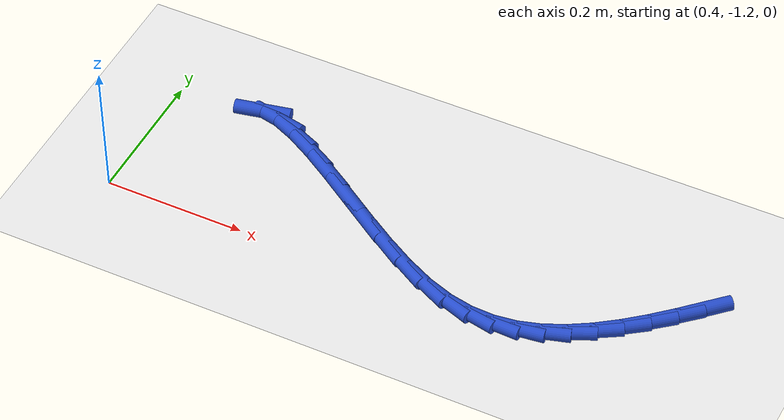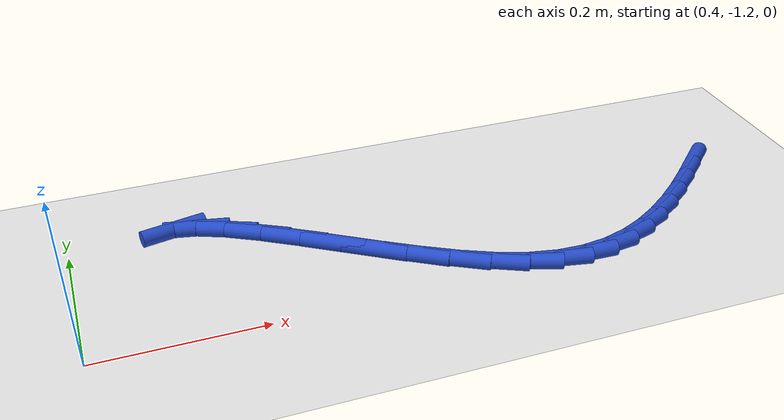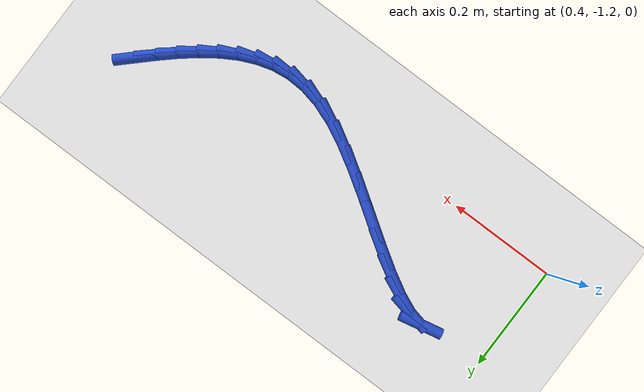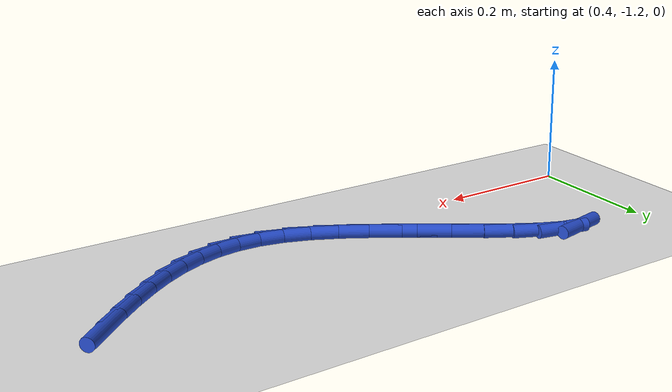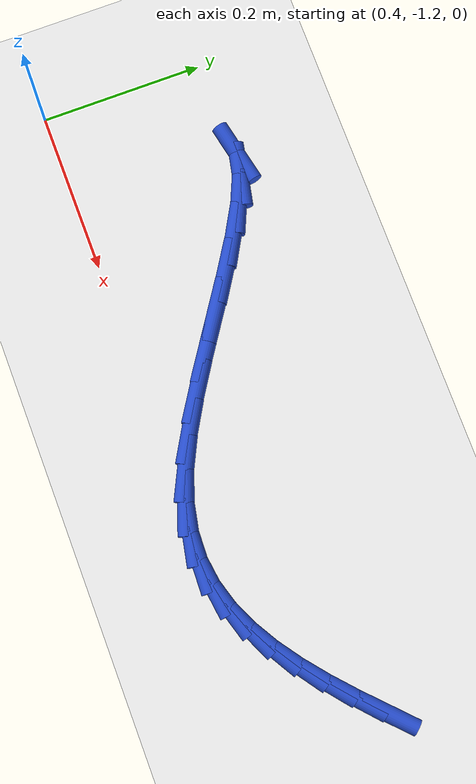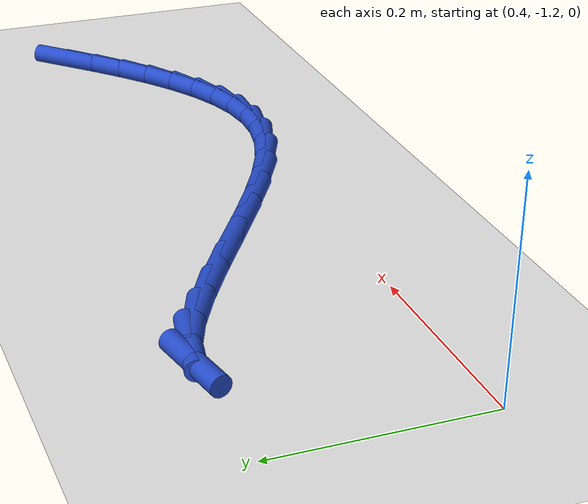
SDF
<sdf version="1.6">
 <world name="default">
  <model name="ground_plane">
   <static>1</static>
   <link name="link">
    <collision name="collision">
     <geometry><plane><normal>0 0 1</normal><size>100 100</size></plane></geometry>
     <surface><friction><ode><mu>100</mu><mu2>50</mu2></ode></friction></surface>
    </collision>
    <visual name="visual">
     <cast_shadows>0</cast_shadows>
     <geometry><plane><normal>0 0 1</normal><size>100 100</size></plane></geometry>
     <material>
      <script><uri>file://media/materials/scripts/gazebo.material</uri><name>Gazebo/WhiteGlow</name></script>
     </material>
    </visual>
   </link>
  </model>
  <model name="line">
   <link name="link_193">
    <pose>1.2079507632146353 -1.068051755556177 0.01 0 1.57 0.7656652365229932</pose>
    <collision name="collision">
     <geometry><cylinder><radius>0.01</radius><length>0.08</length></cylinder></geometry>
    </collision>
    <visual name="visual">
     <material>
      <script><name>Gazebo/Blue</name><uri>file://media/materials/scripts/gazebo.material</uri></script>
     </material>
     <geometry><cylinder><radius>0.01</radius><length>0.08</length></cylinder></geometry>
    </visual>
   </link>
   <link name="link_194">
    <pose>1.1804619964937766 -1.0944765125481317 0.01 0 1.57 0.7333091291795537</pose>
    <collision name="collision">
     <geometry><cylinder><radius>0.01</radius><length>0.08</length></cylinder></geometry>
    </collision>
    <visual name="visual">
     <material>
      <script><name>Gazebo/Blue</name><uri>file://media/materials/scripts/gazebo.material</uri></script>
     </material>
     <geometry><cylinder><radius>0.01</radius><length>0.08</length></cylinder></geometry>
    </visual>
   </link>
   <link name="link_195">
    <pose>1.1525908862565708 -1.1195854449059326 0.01 0 1.57 0.6854327241497098</pose>
    <collision name="collision">
     <geometry><cylinder><radius>0.01</radius><length>0.08</length></cylinder></geometry>
    </collision>
    <visual name="visual">
     <material>
      <script><name>Gazebo/Blue</name><uri>file://media/materials/scripts/gazebo.material</uri></script>
     </material>
     <geometry><cylinder><radius>0.01</radius><length>0.08</length></cylinder></geometry>
    </visual>
   </link>
   <link name="link_196">
    <pose>1.124254652735761 -1.1427555998440517 0.01 0 1.57 0.6197196915954586</pose>
    <collision name="collision">
     <geometry><cylinder><radius>0.01</radius><length>0.08</length></cylinder></geometry>
    </collision>
    <visual name="visual">
     <material>
      <script><name>Gazebo/Blue</name><uri>file://media/materials/scripts/gazebo.material</uri></script>
     </material>
     <geometry><cylinder><radius>0.01</radius><length>0.08</length></cylinder></geometry>
    </visual>
   </link>
   <link name="link_197">
    <pose>1.09537051616409 -1.1633640245769616 0.01 0 1.57 0.5332853564508239</pose>
    <collision name="collision">
     <geometry><cylinder><radius>0.01</radius><length>0.08</length></cylinder></geometry>
    </collision>
    <visual name="visual">
     <material>
      <script><name>Gazebo/Blue</name><uri>file://media/materials/scripts/gazebo.material</uri></script>
     </material>
     <geometry><cylinder><radius>0.01</radius><length>0.08</length></cylinder></geometry>
    </visual>
   </link>
   <link name="link_198">
    <pose>1.0658556967743003 -1.1807877663191342 0.01 0 1.57 0.4232219327774479</pose>
    <collision name="collision">
     <geometry><cylinder><radius>0.01</radius><length>0.08</length></cylinder></geometry>
    </collision>
    <visual name="visual">
     <material>
      <script><name>Gazebo/Blue</name><uri>file://media/materials/scripts/gazebo.material</uri></script>
     </material>
     <geometry><cylinder><radius>0.01</radius><length>0.08</length></cylinder></geometry>
    </visual>
   </link>
   <link name="link_199">
    <pose>1.0356274147991351 -1.1944038722850419 0.01 0 1.57 0.2878499644519966</pose>
    <collision name="collision">
     <geometry><cylinder><radius>0.01</radius><length>0.08</length></cylinder></geometry>
    </collision>
    <visual name="visual">
     <material>
      <script><name>Gazebo/Blue</name><uri>file://media/materials/scripts/gazebo.material</uri></script>
     </material>
     <geometry><cylinder><radius>0.01</radius><length>0.08</length></cylinder></geometry>
    </visual>
   </link>
   <link name="link_200">
    <pose>1.0046028904713367 -1.2035893896891567 0.01 0 1.57 0.1292778921571984</pose>
    <collision name="collision">
     <geometry><cylinder><radius>0.01</radius><length>0.08</length></cylinder></geometry>
    </collision>
    <visual name="visual">
     <material>
      <script><name>Gazebo/Blue</name><uri>file://media/materials/scripts/gazebo.material</uri></script>
     </material>
     <geometry><cylinder><radius>0.01</radius><length>0.08</length></cylinder></geometry>
    </visual>
   </link>
   <link name="link_201">
    <pose>0.9726733934533224 -1.2077403180758515 0.01 0 1.57 -0.039425437275274235</pose>
    <collision name="collision">
     <geometry><cylinder><radius>0.01</radius><length>0.08</length></cylinder></geometry>
    </collision>
    <visual name="visual">
     <material>
      <script><name>Gazebo/Blue</name><uri>file://media/materials/scripts/gazebo.material</uri></script>
     </material>
     <geometry><cylinder><radius>0.01</radius><length>0.08</length></cylinder></geometry>
    </visual>
   </link>
   <link name="link_202">
    <pose>0.9394857208486476 -1.2064312012191134 0.01 0 1.57 -0.2004196877661025</pose>
    <collision name="collision">
     <geometry><cylinder><radius>0.01</radius><length>0.08</length></cylinder></geometry>
    </collision>
    <visual name="visual">
     <material>
      <script><name>Gazebo/Blue</name><uri>file://media/materials/scripts/gazebo.material</uri></script>
     </material>
     <geometry><cylinder><radius>0.01</radius><length>0.08</length></cylinder></geometry>
    </visual>
   </link>
   <link name="link_203">
    <pose>0.9045524446420965 -1.1993346107474185 0.01 0 1.57 -0.3415032757740083</pose>
    <collision name="collision">
     <geometry><cylinder><radius>0.01</radius><length>0.08</length></cylinder></geometry>
    </collision>
    <visual name="visual">
     <material>
      <script><name>Gazebo/Blue</name><uri>file://media/materials/scripts/gazebo.material</uri></script>
     </material>
     <geometry><cylinder><radius>0.01</radius><length>0.08</length></cylinder></geometry>
    </visual>
   </link>
   <link name="link_204">
    <pose>0.8673847526137473 -1.1861241292074578 0.01 0 1.57 -0.4542085732809001</pose>
    <collision name="collision">
     <geometry><cylinder><radius>0.01</radius><length>0.08</length></cylinder></geometry>
    </collision>
    <visual name="visual">
     <material>
      <script><name>Gazebo/Blue</name><uri>file://media/materials/scripts/gazebo.material</uri></script>
     </material>
     <geometry><cylinder><radius>0.01</radius><length>0.08</length></cylinder></geometry>
    </visual>
   </link>
   <link name="link_205">
    <pose>0.8276695054844564 -1.1667329103344737 0.01 0 1.57 -0.526885265042497</pose>
    <collision name="collision">
     <geometry><cylinder><radius>0.01</radius><length>0.08</length></cylinder></geometry>
    </collision>
    <visual name="visual">
     <material>
      <script><name>Gazebo/Blue</name><uri>file://media/materials/scripts/gazebo.material</uri></script>
     </material>
     <geometry><cylinder><radius>0.01</radius><length>0.08</length></cylinder></geometry>
    </visual>
   </link>
   <link name="link_206">
    <pose>0.7860654420107118 -1.1425301374293158 0.01 0 1.57 -0.5685007725461246</pose>
    <collision name="collision">
     <geometry><cylinder><radius>0.01</radius><length>0.08</length></cylinder></geometry>
    </collision>
    <visual name="visual">
     <material>
      <script><name>Gazebo/Blue</name><uri>file://media/materials/scripts/gazebo.material</uri></script>
     </material>
     <geometry><cylinder><radius>0.01</radius><length>0.08</length></cylinder></geometry>
    </visual>
   </link>
   <link name="link_207">
    <pose>0.7435655229445458 -1.1153788342228905 0.01 0 1.57 -0.5874802680323974</pose>
    <collision name="collision">
     <geometry><cylinder><radius>0.01</radius><length>0.08</length></cylinder></geometry>
    </collision>
    <visual name="visual">
     <material>
      <script><name>Gazebo/Blue</name><uri>file://media/materials/scripts/gazebo.material</uri></script>
     </material>
     <geometry><cylinder><radius>0.01</radius><length>0.08</length></cylinder></geometry>
    </visual>
   </link>
   <link name="link_208">
    <pose>0.7011630149632272 -1.0871424764757511 0.01 0 1.57 -0.5866056296090617</pose>
    <collision name="collision">
     <geometry><cylinder><radius>0.01</radius><length>0.08</length></cylinder></geometry>
    </collision>
    <visual name="visual">
     <material>
      <script><name>Gazebo/Blue</name><uri>file://media/materials/scripts/gazebo.material</uri></script>
     </material>
     <geometry><cylinder><radius>0.01</radius><length>0.08</length></cylinder></geometry>
    </visual>
   </link>
   <link name="link_209">
    <pose>0.6598511847440256 -1.0596845399484511 0.01 0 1.57 -0.5640545468208413</pose>
    <collision name="collision">
     <geometry><cylinder><radius>0.01</radius><length>0.08</length></cylinder></geometry>
    </collision>
    <visual name="visual">
     <material>
      <script><name>Gazebo/Blue</name><uri>file://media/materials/scripts/gazebo.material</uri></script>
     </material>
     <geometry><cylinder><radius>0.01</radius><length>0.08</length></cylinder></geometry>
    </visual>
   </link>
   <link name="link_210">
    <pose>0.6206232989642078 -1.0348685004015417 0.01 0 1.57 -0.5118831550042305</pose>
    <collision name="collision">
     <geometry><cylinder><radius>0.01</radius><length>0.08</length></cylinder></geometry>
    </collision>
    <visual name="visual">
     <material>
      <script><name>Gazebo/Blue</name><uri>file://media/materials/scripts/gazebo.material</uri></script>
     </material>
     <geometry><cylinder><radius>0.01</radius><length>0.08</length></cylinder></geometry>
    </visual>
   </link>
   <link name="link_211">
    <pose>0.5844726243010436 -1.014557833595576 0.01 0 1.57 -0.4099675848757524</pose>
    <collision name="collision">
     <geometry><cylinder><radius>0.01</radius><length>0.08</length></cylinder></geometry>
    </collision>
    <visual name="visual">
     <material>
      <script><name>Gazebo/Blue</name><uri>file://media/materials/scripts/gazebo.material</uri></script>
     </material>
     <geometry><cylinder><radius>0.01</radius><length>0.08</length></cylinder></geometry>
    </visual>
   </link>
   <link name="link_212">
    <pose>0.5523924274318016 -1.0006160152911066 0.01 0 1.57 -0.20826947401341342</pose>
    <collision name="collision">
     <geometry><cylinder><radius>0.01</radius><length>0.08</length></cylinder></geometry>
    </collision>
    <visual name="visual">
     <material>
      <script><name>Gazebo/Blue</name><uri>file://media/materials/scripts/gazebo.material</uri></script>
     </material>
     <geometry><cylinder><radius>0.01</radius><length>0.08</length></cylinder></geometry>
    </visual>
   </link>
   <link name="link_213">
    <pose>0.5253759750337508 -0.9949065212486866 0.01 0 1.57 0.2062985796149148</pose>
    <collision name="collision">
     <geometry><cylinder><radius>0.01</radius><length>0.08</length></cylinder></geometry>
    </collision>
    <visual name="visual">
     <material>
      <script><name>Gazebo/Blue</name><uri>file://media/materials/scripts/gazebo.material</uri></script>
     </material>
     <geometry><cylinder><radius>0.01</radius><length>0.08</length></cylinder></geometry>
    </visual>
   </link>
  </model>
 </world>
</sdf>
